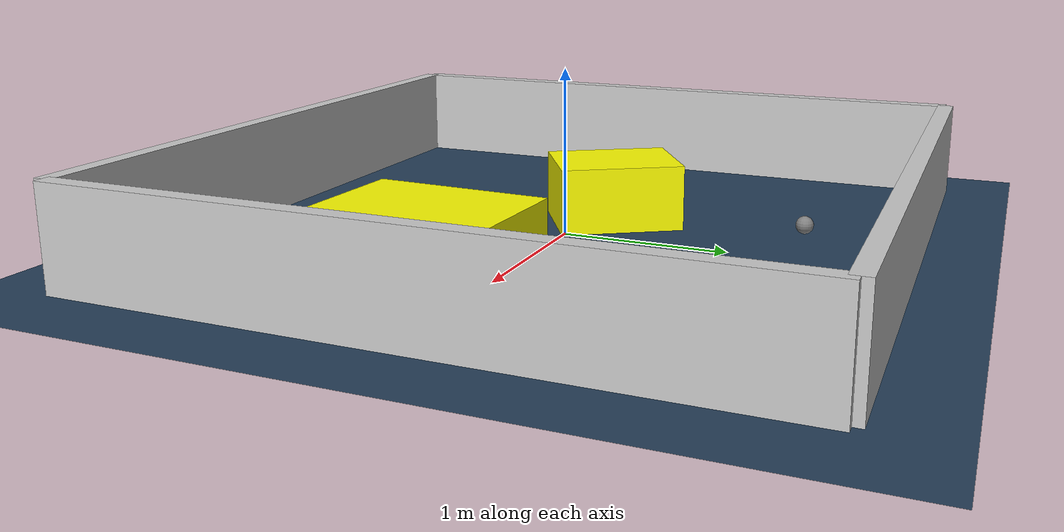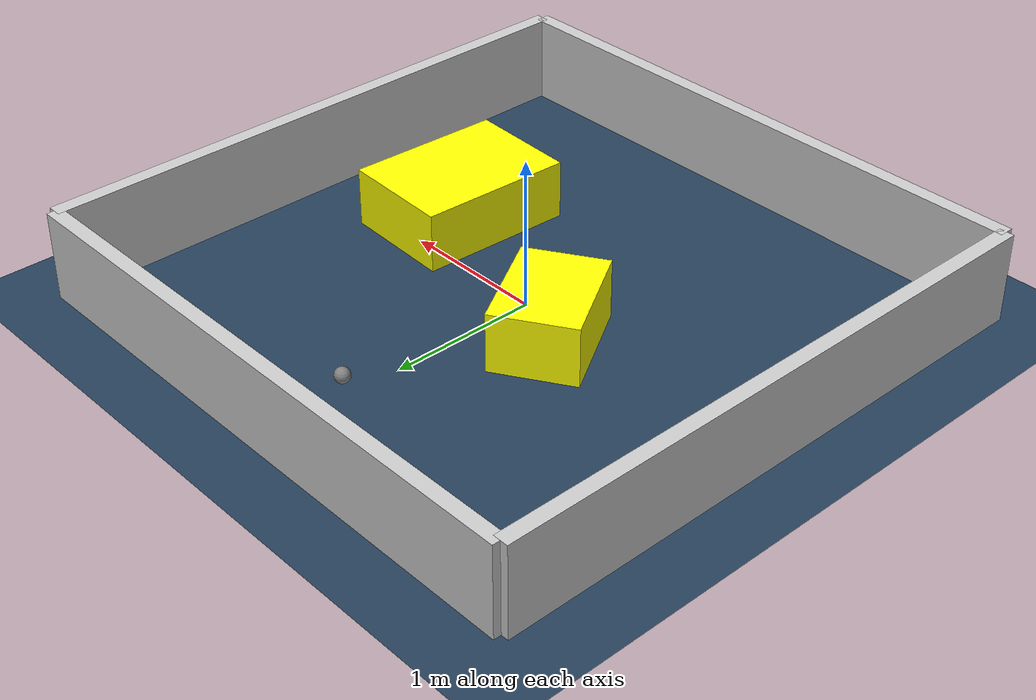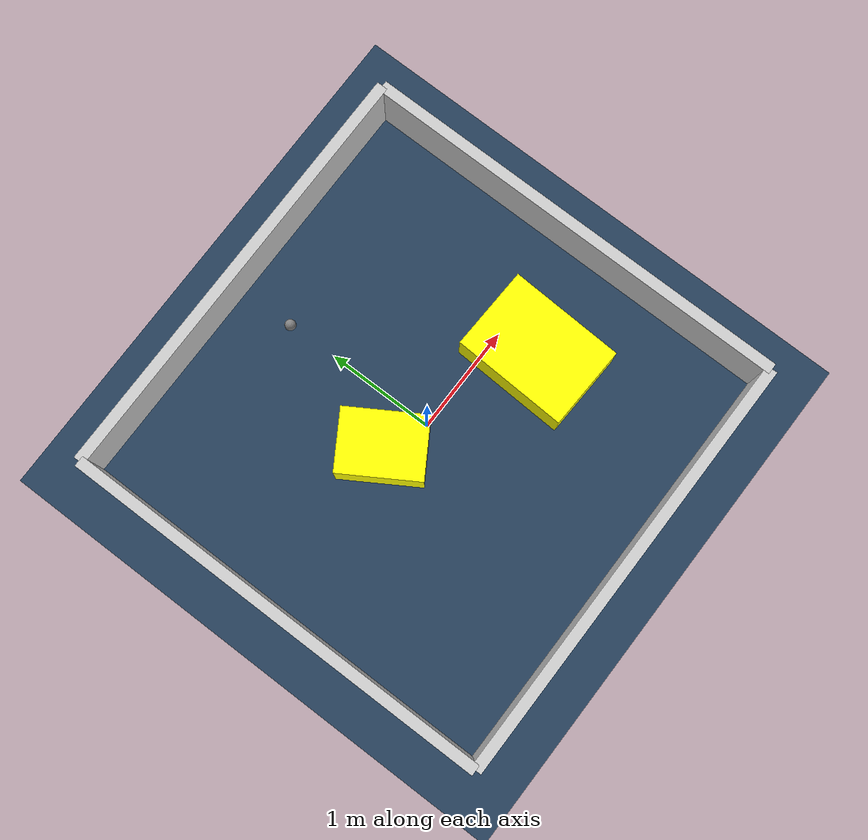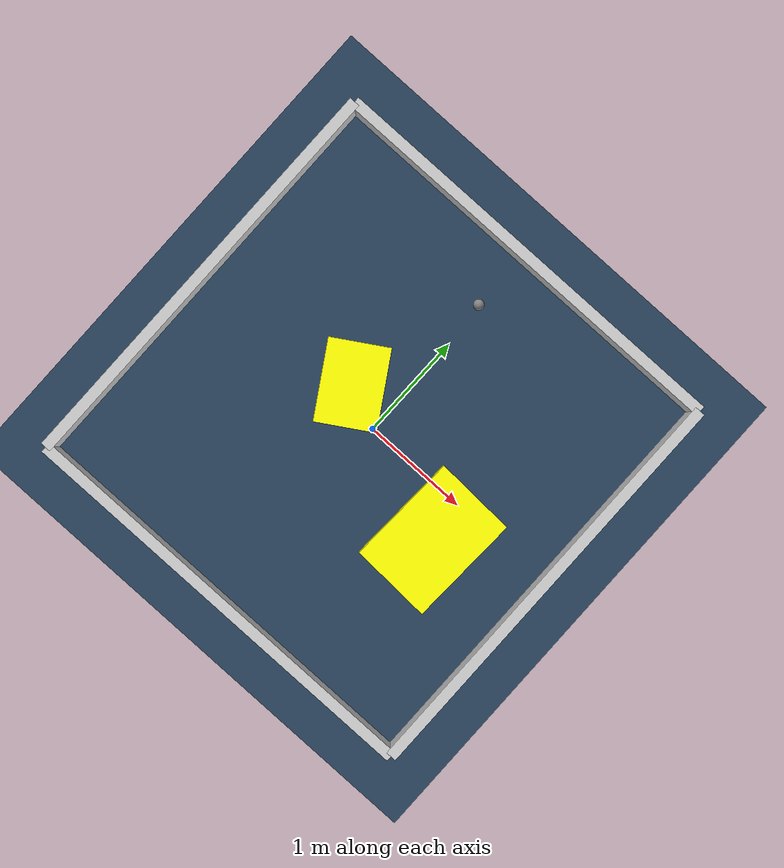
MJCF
<?xml version="1.0" ?>
<mujoco model="generated_environment">
  <option timestep="0.01" integrator="RK4" cone="elliptic"/>
  <default>
    <geom density="1"/>
  </default>
  <asset>
    <texture builtin="gradient" height="3072" rgb1="0.3 0.5 0.7" rgb2="0 0 0" type="skybox" width="512"/>
    <texture builtin="checker" height="300" mark="edge" markrgb="0.8 0.8 0.8" name="groundplane" rgb1="0.2 0.3 0.4" rgb2="0.1 0.2 0.3" type="2d" width="300"/>
    <material name="groundplane" reflectance="0.2" texrepeat="5 5" texture="groundplane" texuniform="true"/>
    <material name="robot" rgba="0.0 1.0 0.0 1"/>
  </asset>
  <worldbody>
    <light dir="0 0 -1" directional="true" pos="0 0 1.5"/>
    <geom condim="4" friction="1.0 0.005 0.001" material="groundplane" name="floor" size="0 0 0.05" type="plane"/>
    <body name="walls">
      <geom name="wall_1" condim="4" pos="-2.0 0.0 0.3" rgba="0.800000011920929 0.800000011920929 0.800000011920929 1.0" size="0.05 2.0 0.3" type="box"/>
      <geom name="wall_2" condim="4" pos="2.0 0.0 0.3" rgba="0.800000011920929 0.800000011920929 0.800000011920929 1.0" size="0.05 2.0 0.3" type="box"/>
      <geom name="wall_3" condim="4" pos="0.0 -2.0 0.3" rgba="0.800000011920929 0.800000011920929 0.800000011920929 1.0" size="2.0 0.05 0.3" type="box"/>
      <geom name="wall_4" condim="4" pos="0.0 2.0 0.3" rgba="0.800000011920929 0.800000011920929 0.800000011920929 1.0" size="2.0 0.05 0.3" type="box"/>
    </body>
    <body name="robot">
      <joint name="joint_x" type="slide" pos="0 0 0" axis="1 0 0"/>
      <joint name="joint_y" type="slide" pos="0 0 0" axis="0 1 0"/>
      <geom name="robot" type="sphere" pos="-0.03608202893742263 1.4279834668042448 0.2" size="0.05" mass="5." friction="1.0 0.005 0.0001" condim="4"/>
      <site name="sensor_ball"/>
    </body>
    <body name="obstacle_1_movable">
      <geom name="obstacle_1_movable" condim="4" pos="1.0316464026644474 -0.36818528139841833 0.2" euler="0 0 267.3953379773859" friction="1.0 0.005 0.001" rgba="1 1 0 1" size="0.5285382060843444 0.38205130199112 0.2" type="box" mass="0.1"/>
      <joint type="free"/>
    </body>
    <body name="obstacle_2_movable">
      <geom name="obstacle_2_movable" condim="4" pos="-0.3895406457556383 0.16982137001688935 0.2" euler="0 0 301.53749554433534" friction="1.0 0.005 0.001" rgba="1 1 0 1" size="0.375793184411864 0.28165575795800935 0.2" type="box" mass="0.1"/>
      <joint type="free"/>
    </body>
  </worldbody>
  <actuator>
    <motor name="actuator_x" joint="joint_x" gear="1" ctrlrange="-1 1"/>
    <motor name="actuator_y" joint="joint_y" gear="1" ctrlrange="-1 1"/>
  </actuator>
</mujoco>
